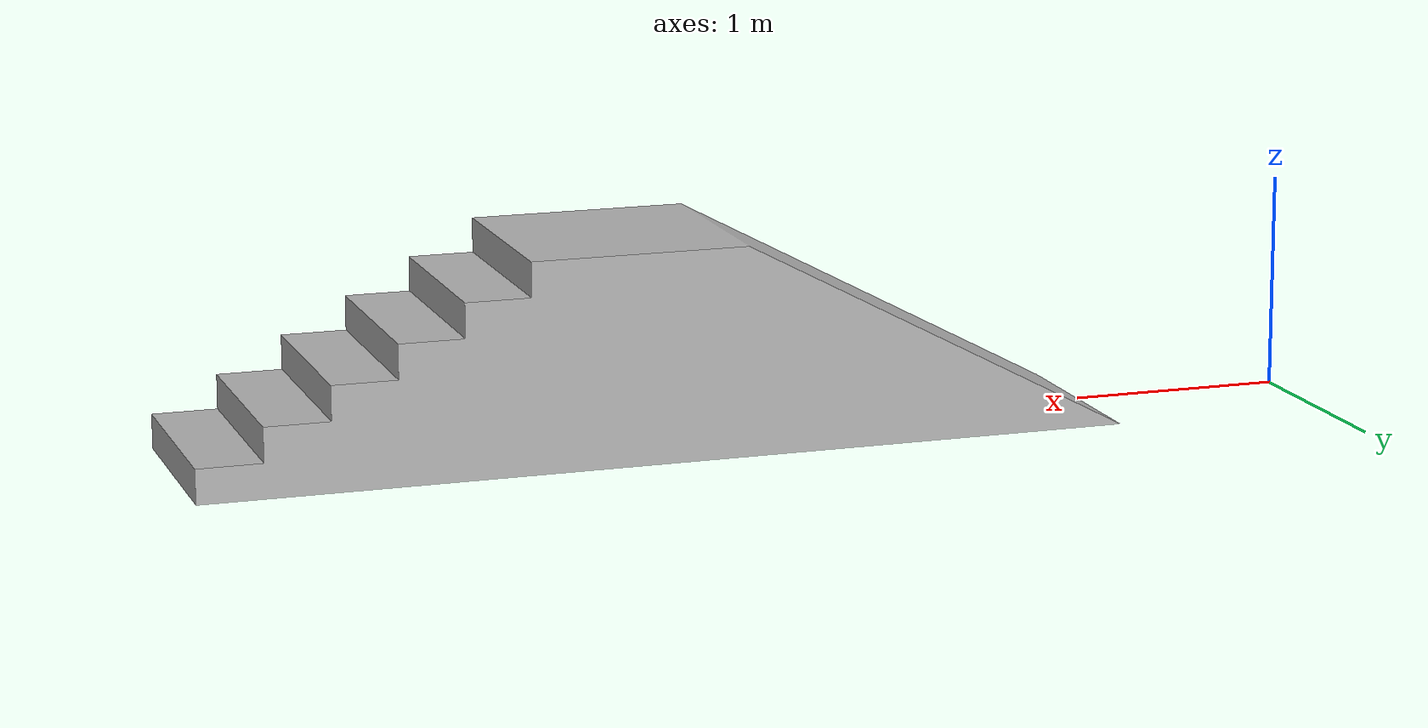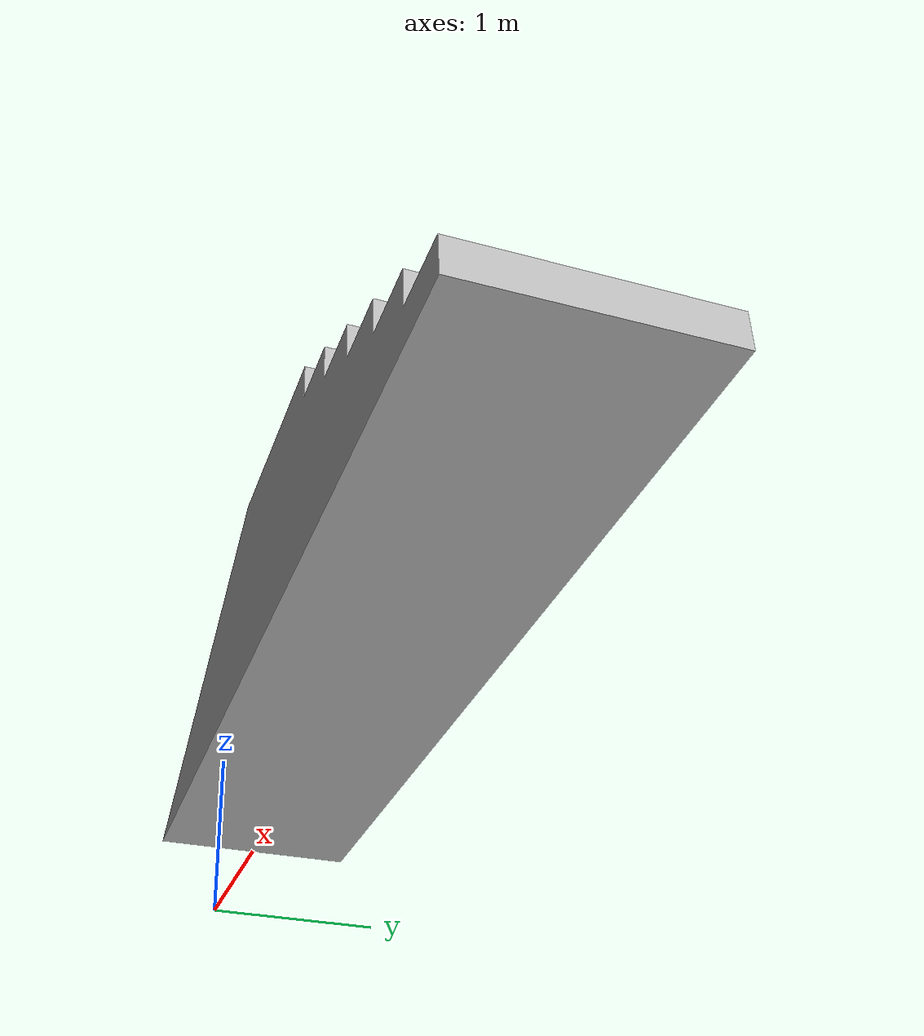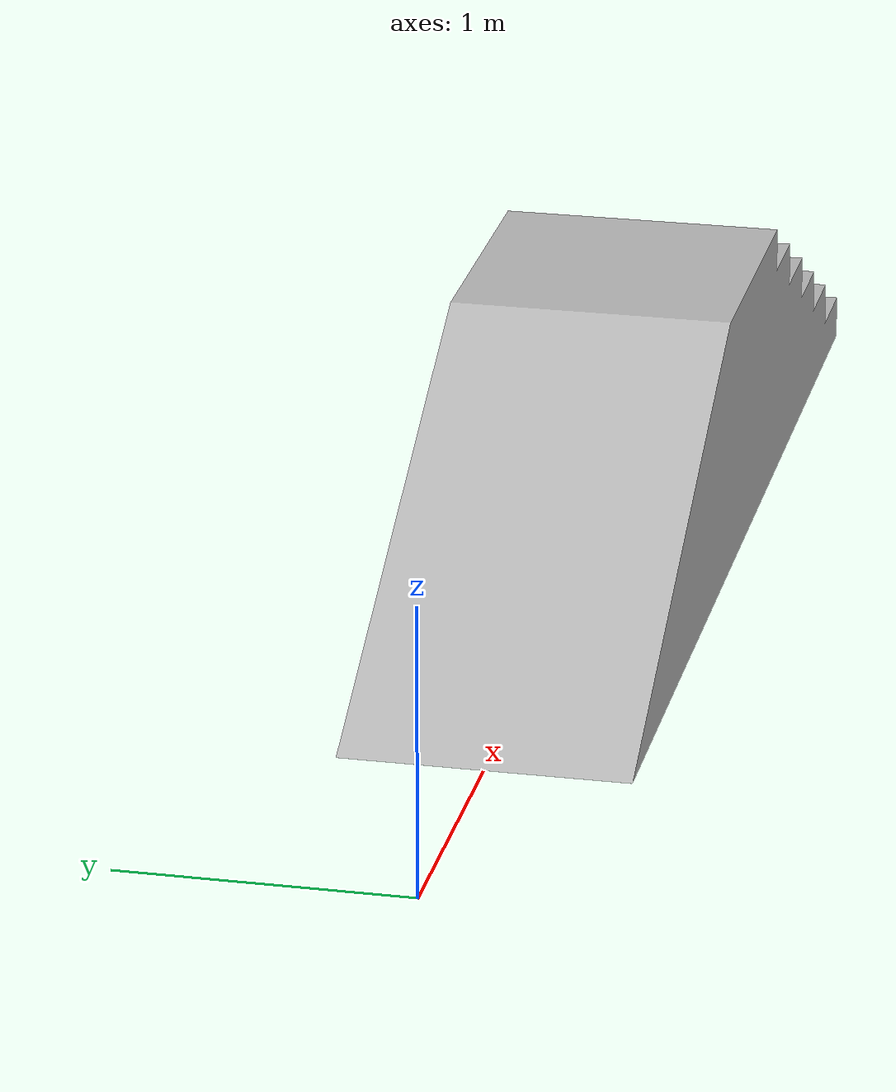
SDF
<?xml version='1.0'?>
<sdf version='1.6'>
  <model name='slope_stairs'>
    <pose frame=''>3.15 0 0 1.5707 0 3.1415</pose>
    <link name='slope'>
      <visual name='slope_0'>
        <pose frame=''>0 0 0 0 0 0</pose>
        <geometry>
          <mesh>
            <uri>model://slope_stairs/meshes/slope.dae</uri>
          </mesh>
        </geometry>
      </visual>
      <collision name='slope_0'>
        <pose frame=''>-2.15 0 -0.5 0 0 0</pose>
        <geometry>
          <mesh>
            <uri>model://slope_stairs/meshes/slope.stl</uri>
          </mesh>
        </geometry>

      </collision>
    </link>
    <static>1</static>
  </model>
</sdf>
